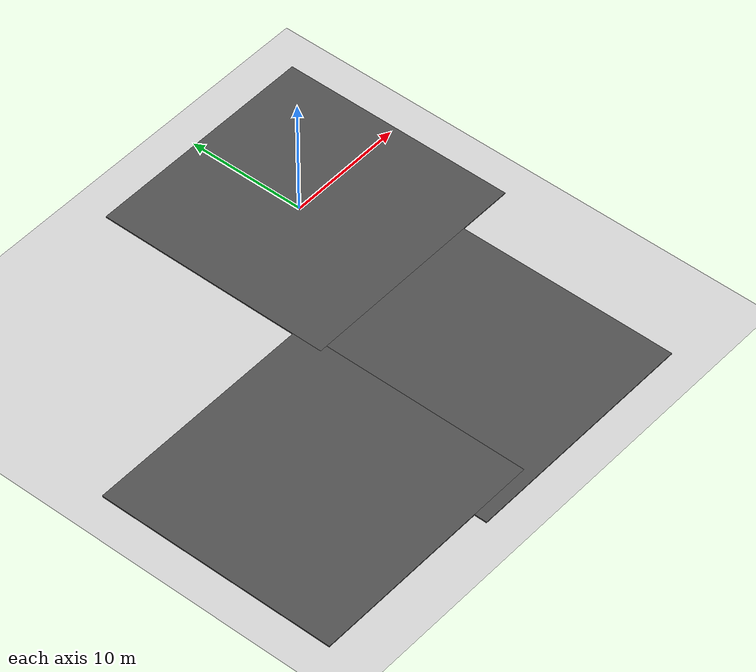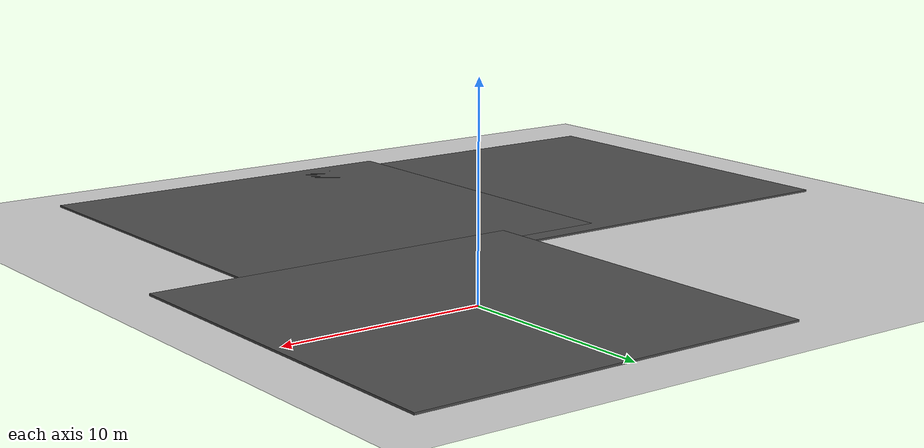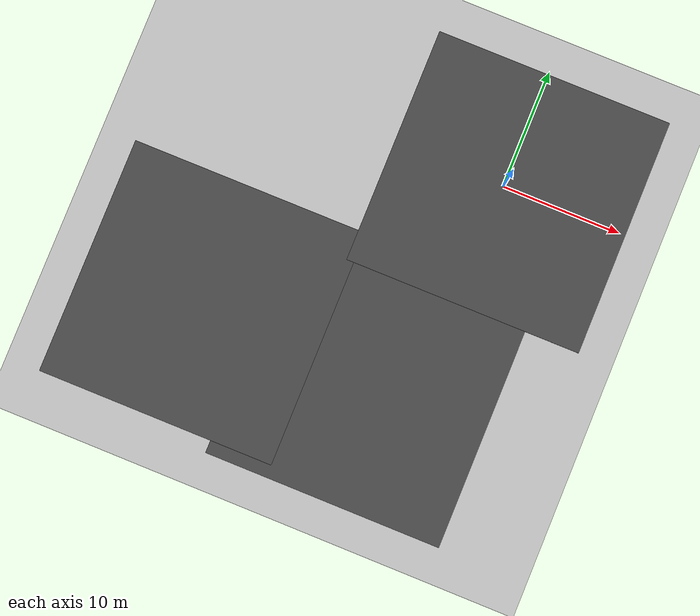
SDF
<sdf version="1.6">
 <world name="default">
  <model name="ground_plane">
   <static>1</static>
   <link name="link">
    <collision name="collision">
     <geometry><plane><normal>0 0 1</normal><size>100 100</size></plane></geometry>
     <surface>
      <contact><collide_bitmask>65535</collide_bitmask></contact>
      <friction><ode><mu>100</mu><mu2>50</mu2></ode></friction>
     </surface>
    </collision>
    <visual name="visual">
     <cast_shadows>0</cast_shadows>
     <geometry><plane><normal>0 0 1</normal><size>100 100</size></plane></geometry>
     <material>
      <script><uri>file://media/materials/scripts/gazebo.material</uri><name>Gazebo/Grey</name></script>
     </material>
    </visual>
   </link>
  </model>
  <model name="asphalt_plane">
   <static>1</static>
   <link name="link">
    <collision name="collision"><geometry><box><size>20 20 0.1</size></box></geometry></collision>
    <visual name="visual">
     <cast_shadows>0</cast_shadows>
     <geometry><box><size>20 20 0.1</size></box></geometry>
     <material>
      <script>
       <uri>model://asphalt_plane/materials/scripts</uri>
       <uri>model://asphalt_plane/materials/textures</uri>
       <name>vrc/asphalt</name>
      </script>
     </material>
    </visual>
   </link>
   <pose>0.533004 -0.175508 0 0 -0 0</pose>
  </model>
  <model name="asphalt_plane_1">
   <static>1</static>
   <link name="link">
    <collision name="collision"><geometry><box><size>20 20 0.1</size></box></geometry></collision>
    <visual name="visual">
     <cast_shadows>0</cast_shadows>
     <geometry><box><size>20 20 0.1</size></box></geometry>
     <material>
      <script>
       <uri>model://asphalt_plane/materials/scripts</uri>
       <uri>model://asphalt_plane/materials/textures</uri>
       <name>vrc/asphalt</name>
      </script>
     </material>
    </visual>
   </link>
   <pose>-18.8455 -17.6454 0 0 -0 0</pose>
  </model>
  <model name="asphalt_plane_2">
   <static>1</static>
   <link name="link">
    <collision name="collision"><geometry><box><size>20 20 0.1</size></box></geometry></collision>
    <visual name="visual">
     <cast_shadows>0</cast_shadows>
     <geometry><box><size>20 20 0.1</size></box></geometry>
     <material>
      <script>
       <uri>model://asphalt_plane/materials/scripts</uri>
       <uri>model://asphalt_plane/materials/textures</uri>
       <name>vrc/asphalt</name>
      </script>
     </material>
    </visual>
   </link>
   <pose>-4.06392 -18.6881 0 0 -0 0</pose>
  </model>
  <include><uri>model://sun</uri></include>
 </world>
</sdf>
